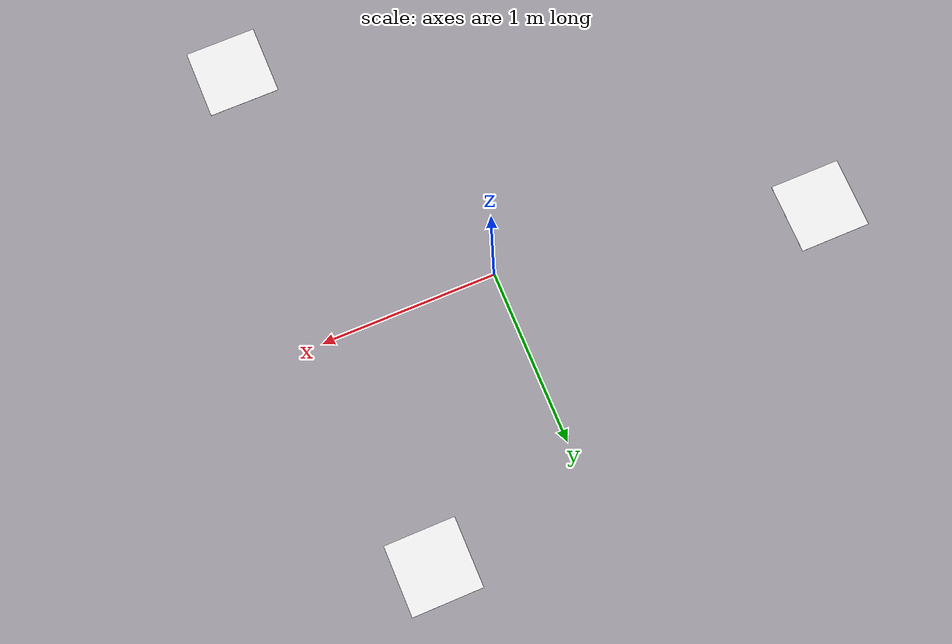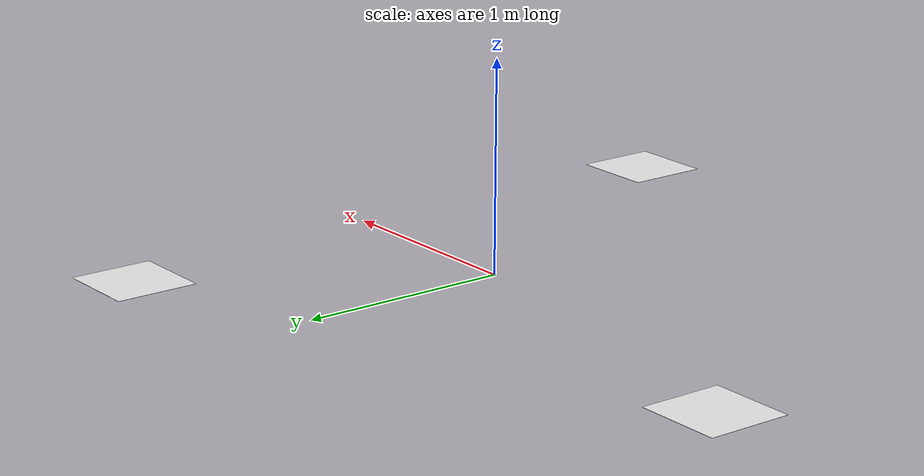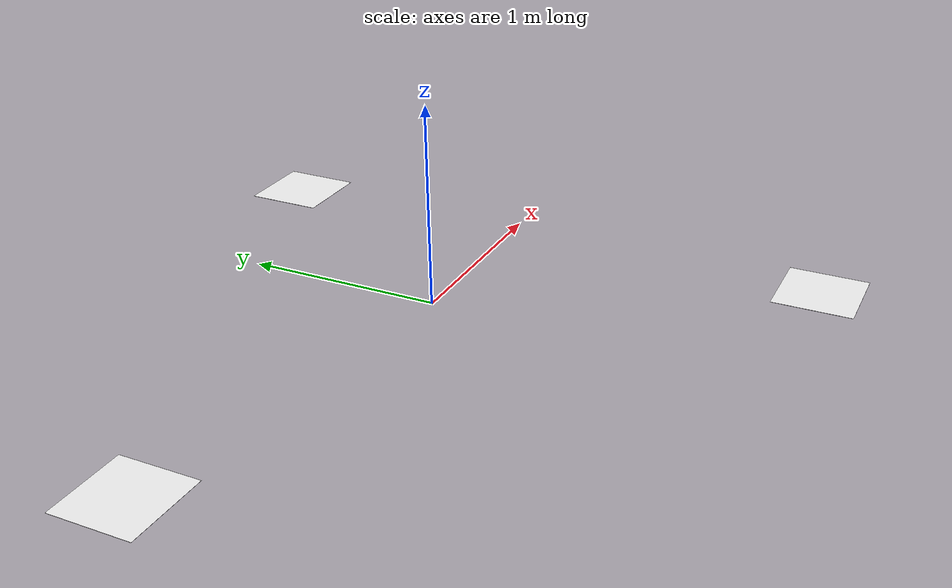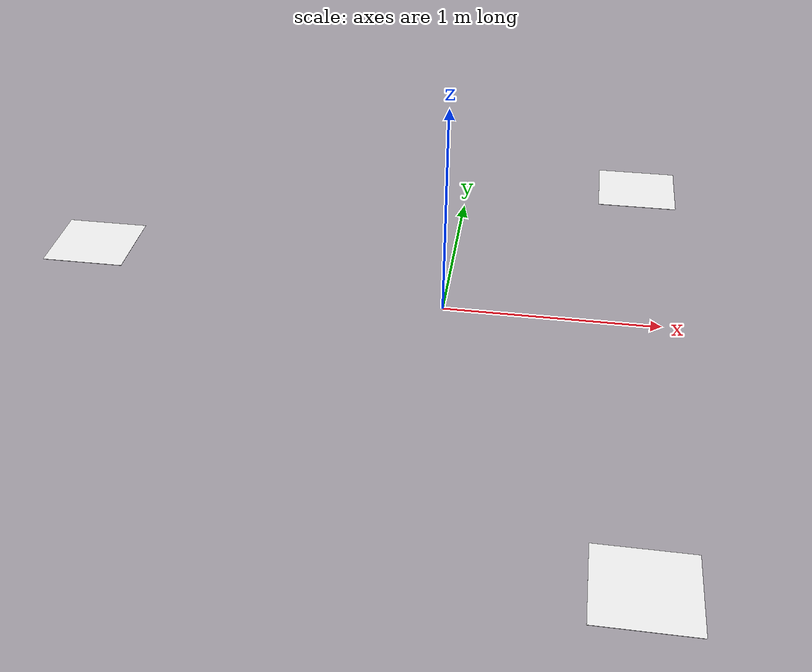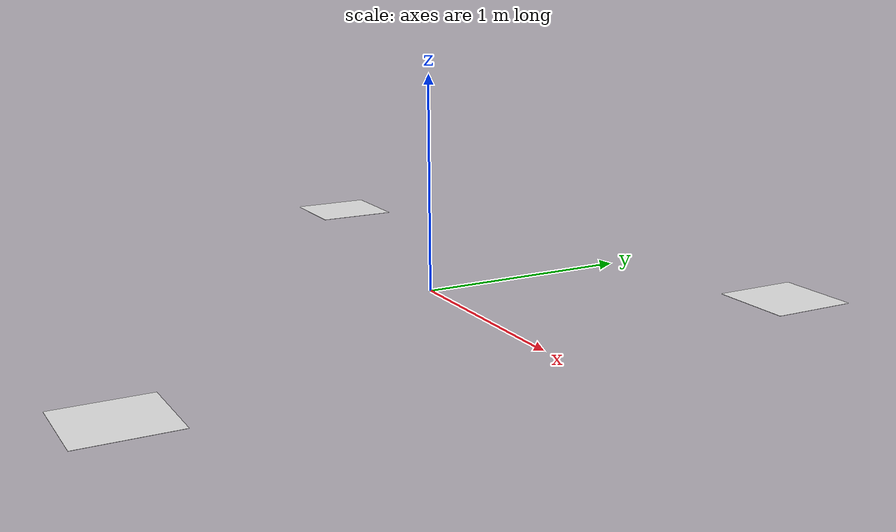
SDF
<?xml version='1.0'?>
<sdf version='1.6'>
  <model name='model_with_obstacle_point'>
    <link name='link_0'>
      <inertial>
        <mass>100</mass>
        <inertia>
          <ixx>1.33334</ixx>
          <ixy>0</ixy>
          <ixz>0</ixz>
          <iyy>1.33334</iyy>
          <iyz>0</iyz>
          <izz>2.66667</izz>
        </inertia>
        <pose frame=''>0 0 0 0 -0 0</pose>
      </inertial>
      <pose frame=''>0.9 1.33333 0 0 -0 0</pose>
      <gravity>1</gravity>
      <self_collide>0</self_collide>
      <kinematic>0</kinematic>
      <enable_wind>0</enable_wind>
      <visual name='visual'>
        <pose frame=''>0 0 0 0 -0 0</pose>
        <geometry>
          <box>
            <size>0.4 0.4 0.001</size>
          </box>
        </geometry>
        <material>
          <lighting>1</lighting>
          <script>
            <uri>file://media/materials/scripts/gazebo.material</uri>
            <name>Gazebo/White</name>
          </script>
          <shader type='vertex'>
            <normal_map>__default__</normal_map>
          </shader>
          <ambient>0.3 0.3 0.3 1</ambient>
          <diffuse>0.7 0.7 0.7 1</diffuse>
          <specular>0.01 0.01 0.01 1</specular>
          <emissive>0 0 0 1</emissive>
        </material>
        <transparency>0</transparency>
        <cast_shadows>1</cast_shadows>
      </visual>
      <collision name='collision'>
        <laser_retro>0</laser_retro>
        <max_contacts>10</max_contacts>
        <pose frame=''>0 0 0 0 -0 0</pose>
        <geometry>
          <box>
            <size>0.4 0.4 0.001</size>
          </box>
        </geometry>
        <surface>
          <friction>
            <ode>
              <mu>1</mu>
              <mu2>1</mu2>
              <fdir1>0 0 0</fdir1>
              <slip1>0</slip1>
              <slip2>0</slip2>
            </ode>
            <torsional>
              <coefficient>1</coefficient>
              <patch_radius>0</patch_radius>
              <surface_radius>0</surface_radius>
              <use_patch_radius>1</use_patch_radius>
              <ode>
                <slip>0</slip>
              </ode>
            </torsional>
          </friction>
          <bounce>
            <restitution_coefficient>0</restitution_coefficient>
            <threshold>1e+06</threshold>
          </bounce>
          <contact>
            <collide_without_contact>0</collide_without_contact>
            <collide_without_contact_bitmask>1</collide_without_contact_bitmask>
            <collide_bitmask>1</collide_bitmask>
            <ode>
              <soft_cfm>0</soft_cfm>
              <soft_erp>0.2</soft_erp>
              <kp>1e+13</kp>
              <kd>1</kd>
              <max_vel>0.01</max_vel>
              <min_depth>0</min_depth>
            </ode>
            <bullet>
              <split_impulse>1</split_impulse>
              <split_impulse_penetration_threshold>-0.01</split_impulse_penetration_threshold>
              <soft_cfm>0</soft_cfm>
              <soft_erp>0.2</soft_erp>
              <kp>1e+13</kp>
              <kd>1</kd>
            </bullet>
          </contact>
        </surface>
      </collision>
    </link>
    <link name='link_0_clone'>
      <inertial>
        <mass>100</mass>
        <inertia>
          <ixx>1.33334</ixx>
          <ixy>0</ixy>
          <ixz>0</ixz>
          <iyy>1.33334</iyy>
          <iyz>0</iyz>
          <izz>2.66667</izz>
        </inertia>
        <pose frame=''>0 0 0 0 -0 0</pose>
      </inertial>
      <pose frame=''>0.9 -1.66667 0 0 -0 0</pose>
      <gravity>1</gravity>
      <self_collide>0</self_collide>
      <kinematic>0</kinematic>
      <enable_wind>0</enable_wind>
      <visual name='visual'>
        <pose frame=''>0 0 0 0 -0 0</pose>
        <geometry>
          <box>
            <size>0.4 0.4 0.001</size>
          </box>
        </geometry>
        <material>
          <lighting>1</lighting>
          <script>
            <uri>file://media/materials/scripts/gazebo.material</uri>
            <name>Gazebo/White</name>
          </script>
          <shader type='vertex'>
            <normal_map>__default__</normal_map>
          </shader>
          <ambient>0.3 0.3 0.3 1</ambient>
          <diffuse>0.7 0.7 0.7 1</diffuse>
          <specular>0.01 0.01 0.01 1</specular>
          <emissive>0 0 0 1</emissive>
        </material>
        <transparency>0</transparency>
        <cast_shadows>1</cast_shadows>
      </visual>
      <collision name='collision'>
        <laser_retro>0</laser_retro>
        <max_contacts>10</max_contacts>
        <pose frame=''>0 0 0 0 -0 0</pose>
        <geometry>
          <box>
            <size>0.4 0.4 0.001</size>
          </box>
        </geometry>
        <surface>
          <friction>
            <ode>
              <mu>1</mu>
              <mu2>1</mu2>
              <fdir1>0 0 0</fdir1>
              <slip1>0</slip1>
              <slip2>0</slip2>
            </ode>
            <torsional>
              <coefficient>1</coefficient>
              <patch_radius>0</patch_radius>
              <surface_radius>0</surface_radius>
              <use_patch_radius>1</use_patch_radius>
              <ode>
                <slip>0</slip>
              </ode>
            </torsional>
          </friction>
          <bounce>
            <restitution_coefficient>0</restitution_coefficient>
            <threshold>1e+06</threshold>
          </bounce>
          <contact>
            <collide_without_contact>0</collide_without_contact>
            <collide_without_contact_bitmask>1</collide_without_contact_bitmask>
            <collide_bitmask>1</collide_bitmask>
            <ode>
              <soft_cfm>0</soft_cfm>
              <soft_erp>0.2</soft_erp>
              <kp>1e+13</kp>
              <kd>1</kd>
              <max_vel>0.01</max_vel>
              <min_depth>0</min_depth>
            </ode>
            <bullet>
              <split_impulse>1</split_impulse>
              <split_impulse_penetration_threshold>-0.01</split_impulse_penetration_threshold>
              <soft_cfm>0</soft_cfm>
              <soft_erp>0.2</soft_erp>
              <kp>1e+13</kp>
              <kd>1</kd>
            </bullet>
          </contact>
        </surface>
      </collision>
    </link>
    <link name='link_0_clone_clone'>
      <inertial>
        <mass>100</mass>
        <inertia>
          <ixx>1.33334</ixx>
          <ixy>0</ixy>
          <ixz>0</ixz>
          <iyy>1.33334</iyy>
          <iyz>0</iyz>
          <izz>2.66667</izz>
        </inertia>
        <pose frame=''>0 0 0 0 -0 0</pose>
      </inertial>
      <pose frame=''>-1.8 0.333333 0 0 -0 0</pose>
      <gravity>1</gravity>
      <self_collide>0</self_collide>
      <kinematic>0</kinematic>
      <enable_wind>0</enable_wind>
      <visual name='visual'>
        <pose frame=''>0 0 0 0 -0 0</pose>
        <geometry>
          <box>
            <size>0.4 0.4 0.001</size>
          </box>
        </geometry>
        <material>
          <lighting>1</lighting>
          <script>
            <uri>file://media/materials/scripts/gazebo.material</uri>
            <name>Gazebo/White</name>
          </script>
          <shader type='vertex'>
            <normal_map>__default__</normal_map>
          </shader>
          <ambient>0.3 0.3 0.3 1</ambient>
          <diffuse>0.7 0.7 0.7 1</diffuse>
          <specular>0.01 0.01 0.01 1</specular>
          <emissive>0 0 0 1</emissive>
        </material>
        <transparency>0</transparency>
        <cast_shadows>1</cast_shadows>
      </visual>
      <collision name='collision'>
        <laser_retro>0</laser_retro>
        <max_contacts>10</max_contacts>
        <pose frame=''>0 0 0 0 -0 0</pose>
        <geometry>
          <box>
            <size>0.4 0.4 0.001</size>
          </box>
        </geometry>
        <surface>
          <friction>
            <ode>
              <mu>1</mu>
              <mu2>1</mu2>
              <fdir1>0 0 0</fdir1>
              <slip1>0</slip1>
              <slip2>0</slip2>
            </ode>
            <torsional>
              <coefficient>1</coefficient>
              <patch_radius>0</patch_radius>
              <surface_radius>0</surface_radius>
              <use_patch_radius>1</use_patch_radius>
              <ode>
                <slip>0</slip>
              </ode>
            </torsional>
          </friction>
          <bounce>
            <restitution_coefficient>0</restitution_coefficient>
            <threshold>1e+06</threshold>
          </bounce>
          <contact>
            <collide_without_contact>0</collide_without_contact>
            <collide_without_contact_bitmask>1</collide_without_contact_bitmask>
            <collide_bitmask>1</collide_bitmask>
            <ode>
              <soft_cfm>0</soft_cfm>
              <soft_erp>0.2</soft_erp>
              <kp>1e+13</kp>
              <kd>1</kd>
              <max_vel>0.01</max_vel>
              <min_depth>0</min_depth>
            </ode>
            <bullet>
              <split_impulse>1</split_impulse>
              <split_impulse_penetration_threshold>-0.01</split_impulse_penetration_threshold>
              <soft_cfm>0</soft_cfm>
              <soft_erp>0.2</soft_erp>
              <kp>1e+13</kp>
              <kd>1</kd>
            </bullet>
          </contact>
        </surface>
      </collision>
    </link>
    <static>0</static>
    <allow_auto_disable>1</allow_auto_disable>
  </model>
</sdf>
